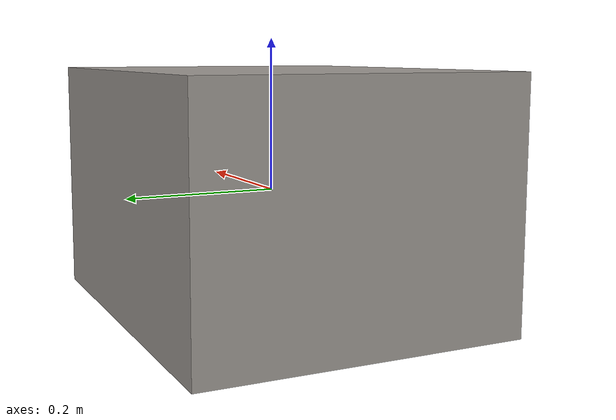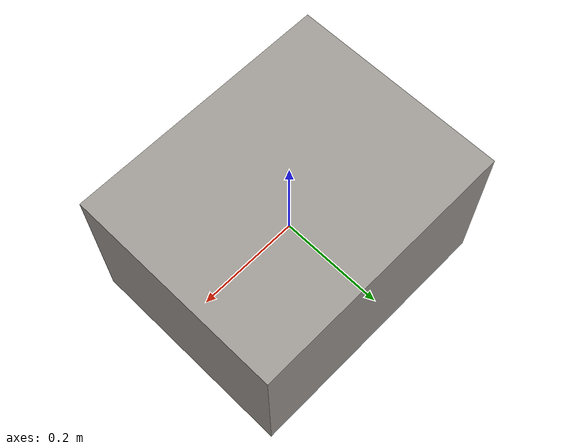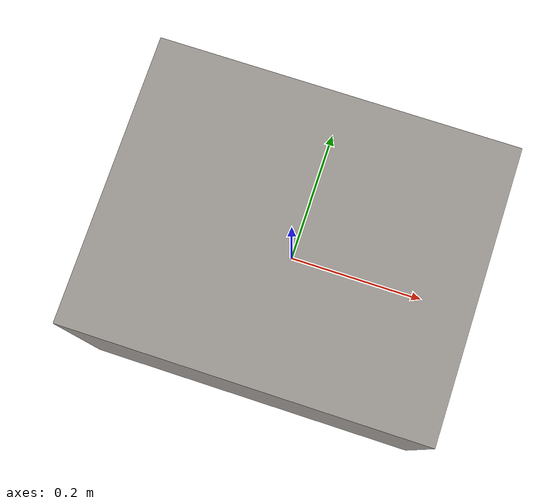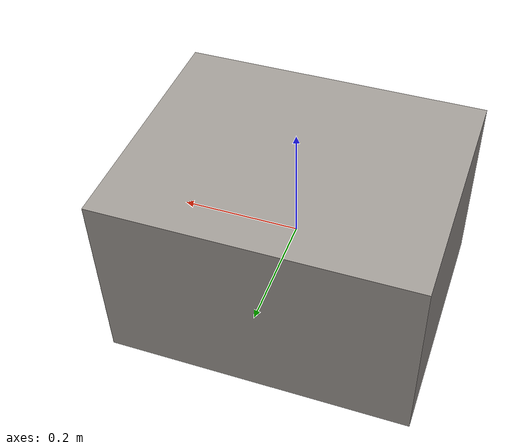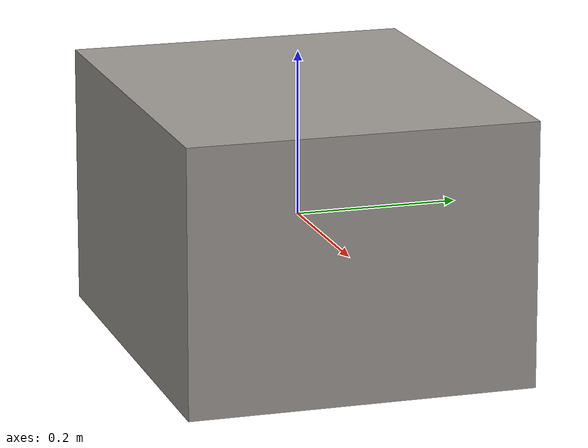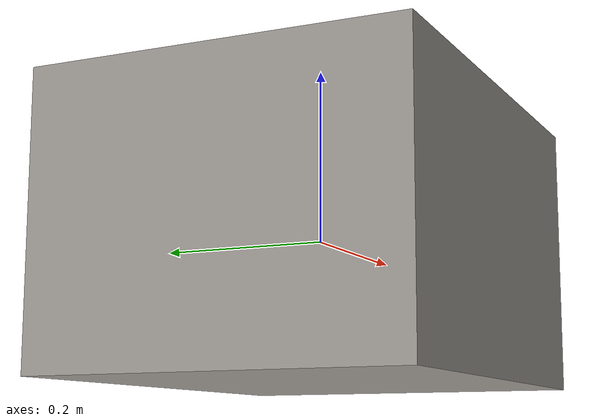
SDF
<?xml version="1.0"?>
<sdf version="1.6">
  <model name="microwave">
    <static>true</static>
    <link name="link">
      <collision name="col">
        <geometry>
          <box>
            <size>0.52 0.42 0.32</size>
          </box>
        </geometry>
      </collision>
      <visual name="vis">
        <geometry>
          <box>
            <size>0.52 0.42 0.32</size>
          </box>
        </geometry>
        <material>
          <ambient>0.62 0.6 0.58 1</ambient>
          <diffuse>0.62 0.6 0.58 1</diffuse>
        </material>
      </visual>
    </link>
  </model>
</sdf>
